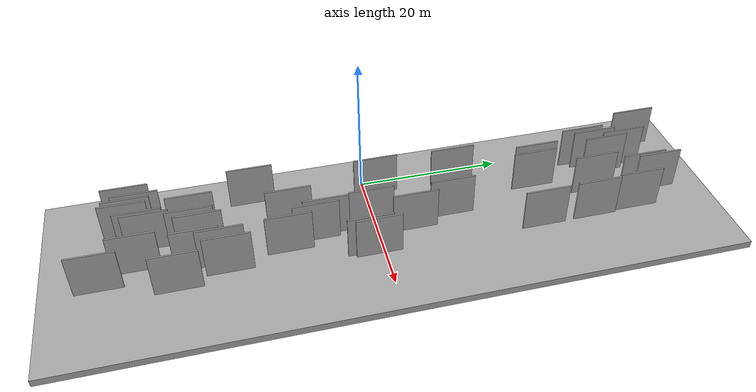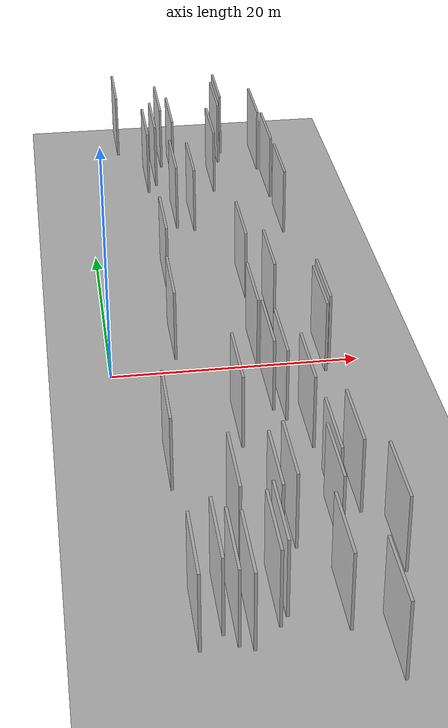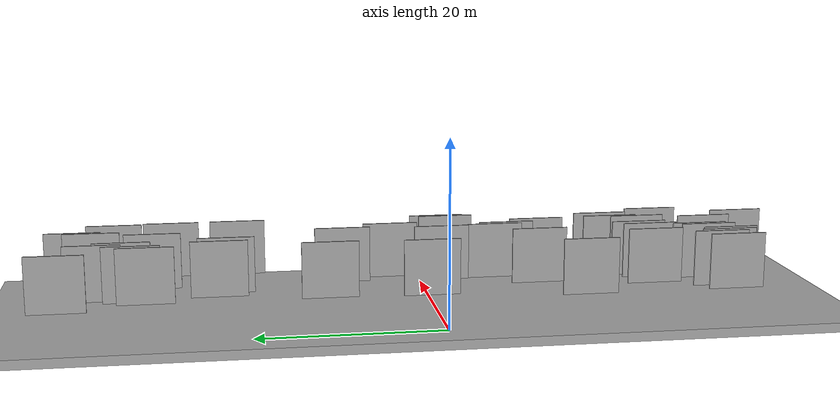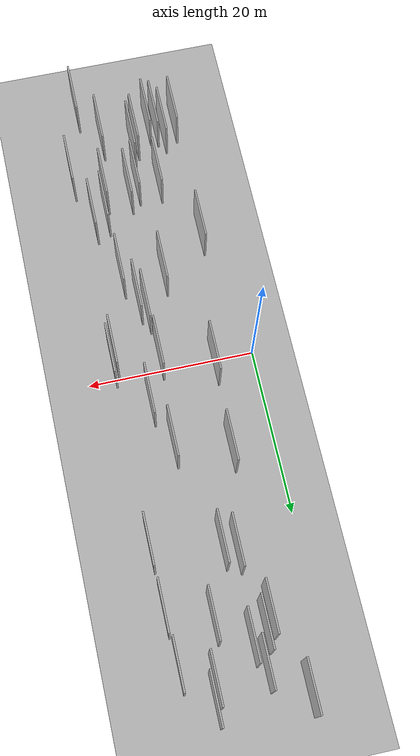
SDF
<?xml version="1.0" encoding="utf-8"?>

<sdf version="1.6">

   <world name="default">

      <gui fullscreen="0">

         <camera name="user_camera">

            <pose>-15 0 4.57585 0 0 0</pose>

            <view_controller>orbit</view_controller>

         </camera>

      </gui>

      <scene>

         <sky>

           <clouds>

             <speed>12</speed>

           </clouds>

         </sky>

         <ambient>0.4 0.4 0.4 1</ambient>

         <background>0.7 0.7 0.7 1</background>

         <shadows>1</shadows>

      </scene>

      <gravity>0 0 -9.8066</gravity>

      <magnetic_field>6e-06 2.3e-05 -4.2e-05</magnetic_field>

      <physics default="0" name="default_physics" type="ode">

         <ode>

            <solver>

               <type>quick</type>

               <iters>10</iters>

               <sor>1.0</sor>

               <use_dynamic_moi_rescaling>0</use_dynamic_moi_rescaling>

            </solver>

            <constraints>

               <cfm>0</cfm>

               <erp>0.2</erp>

               <contact_max_correcting_vel>100</contact_max_correcting_vel>

               <contact_surface_layer>0.001</contact_surface_layer>

            </constraints>

         </ode>

         <max_step_size>0.004</max_step_size>

         <real_time_factor>1</real_time_factor>

         <real_time_update_rate>250</real_time_update_rate>

      </physics>

      <light name="sun" type="directional">

         <cast_shadows>1</cast_shadows>

         <pose>0 0 10 0 0 0</pose>

         <diffuse>0.8 0.8 0.8 1</diffuse>

         <specular>0.2 0.2 0.2 1</specular>

         <attenuation>

            <range>1000</range>

            <constant>0.9</constant>

            <linear>0.01</linear>

            <quadratic>0.001</quadratic>

         </attenuation>

         <direction>-0.5 0.1 -0.9</direction>

      </light>

      <include>

         <name>ground_plane_1</name>

         <uri>model://HANNAS_ground_plane</uri>

         <pose>0 0 0  0 0 0</pose>

      </include>

      <include>

         <name>ground_plane_2</name>

         <uri>model://HANNAS_ground_plane</uri>

         <pose>100 0 0  0 0 0</pose>

      </include>

      <model name="HANNAS_wall_1">

         <static>1</static>

         <pose frame="">10.4138 -23.0798 2.5 0.000000 0.000000 1.570796</pose>

         <link name="link">

            <pose frame="">0 0 3.00 0 0 0</pose>

            <collision name="collision">

               <geometry>

                  <box>

                     <size>6.00 0.2 6.00</size>

                  </box>

               </geometry>

               <max_contacts>10</max_contacts>

               <surface>

                  <contact>

                     <ode/>

                  </contact>

                  <bounce/>

                  <friction>

                     <torsional>

                        <ode/>

                     </torsional>

                     <ode/>

                  </friction>

               </surface>

            </collision>

            <visual name="visual">

               <cast_shadows>0</cast_shadows>

               <geometry>

                  <box>

                     <size>6.00 0.2 6.00</size>

                  </box>

               </geometry>

               <material>

                  <script>

                     <uri>model://HANNAS_wall/materials/scripts</uri>

                     <uri>model://HANNAS_wall/materials/textures</uri>

                     <name>vrc/HANNAS_wall</name>

                  </script>

               </material>

            </visual>

            <self_collide>0</self_collide>

            <enable_wind>0</enable_wind>

            <kinematic>0</kinematic>

         </link>

      </model>

      <model name="HANNAS_wall_2">

         <static>1</static>

         <pose frame="">3.3635 39.5296 2.5 0.000000 0.000000 1.570796</pose>

         <link name="link">

            <pose frame="">0 0 3.00 0 0 0</pose>

            <collision name="collision">

               <geometry>

                  <box>

                     <size>6.00 0.2 6.00</size>

                  </box>

               </geometry>

               <max_contacts>10</max_contacts>

               <surface>

                  <contact>

                     <ode/>

                  </contact>

                  <bounce/>

                  <friction>

                     <torsional>

                        <ode/>

                     </torsional>

                     <ode/>

                  </friction>

               </surface>

            </collision>

            <visual name="visual">

               <cast_shadows>0</cast_shadows>

               <geometry>

                  <box>

                     <size>6.00 0.2 6.00</size>

                  </box>

               </geometry>

               <material>

                  <script>

                     <uri>model://HANNAS_wall/materials/scripts</uri>

                     <uri>model://HANNAS_wall/materials/textures</uri>

                     <name>vrc/HANNAS_wall</name>

                  </script>

               </material>

            </visual>

            <self_collide>0</self_collide>

            <enable_wind>0</enable_wind>

            <kinematic>0</kinematic>

         </link>

      </model>

      <model name="HANNAS_wall_3">

         <static>1</static>

         <pose frame="">13.4250 38.5788 2.5 0.000000 0.000000 1.570796</pose>

         <link name="link">

            <pose frame="">0 0 3.00 0 0 0</pose>

            <collision name="collision">

               <geometry>

                  <box>

                     <size>6.00 0.2 6.00</size>

                  </box>

               </geometry>

               <max_contacts>10</max_contacts>

               <surface>

                  <contact>

                     <ode/>

                  </contact>

                  <bounce/>

                  <friction>

                     <torsional>

                        <ode/>

                     </torsional>

                     <ode/>

                  </friction>

               </surface>

            </collision>

            <visual name="visual">

               <cast_shadows>0</cast_shadows>

               <geometry>

                  <box>

                     <size>6.00 0.2 6.00</size>

                  </box>

               </geometry>

               <material>

                  <script>

                     <uri>model://HANNAS_wall/materials/scripts</uri>

                     <uri>model://HANNAS_wall/materials/textures</uri>

                     <name>vrc/HANNAS_wall</name>

                  </script>

               </material>

            </visual>

            <self_collide>0</self_collide>

            <enable_wind>0</enable_wind>

            <kinematic>0</kinematic>

         </link>

      </model>

      <model name="HANNAS_wall_4">

         <static>1</static>

         <pose frame="">16.3193 -2.2714 2.5 0.000000 0.000000 1.570796</pose>

         <link name="link">

            <pose frame="">0 0 3.00 0 0 0</pose>

            <collision name="collision">

               <geometry>

                  <box>

                     <size>6.00 0.2 6.00</size>

                  </box>

               </geometry>

               <max_contacts>10</max_contacts>

               <surface>

                  <contact>

                     <ode/>

                  </contact>

                  <bounce/>

                  <friction>

                     <torsional>

                        <ode/>

                     </torsional>

                     <ode/>

                  </friction>

               </surface>

            </collision>

            <visual name="visual">

               <cast_shadows>0</cast_shadows>

               <geometry>

                  <box>

                     <size>6.00 0.2 6.00</size>

                  </box>

               </geometry>

               <material>

                  <script>

                     <uri>model://HANNAS_wall/materials/scripts</uri>

                     <uri>model://HANNAS_wall/materials/textures</uri>

                     <name>vrc/HANNAS_wall</name>

                  </script>

               </material>

            </visual>

            <self_collide>0</self_collide>

            <enable_wind>0</enable_wind>

            <kinematic>0</kinematic>

         </link>

      </model>

      <model name="HANNAS_wall_5">

         <static>1</static>

         <pose frame="">16.8255 28.2337 2.5 0.000000 0.000000 1.570796</pose>

         <link name="link">

            <pose frame="">0 0 3.00 0 0 0</pose>

            <collision name="collision">

               <geometry>

                  <box>

                     <size>6.00 0.2 6.00</size>

                  </box>

               </geometry>

               <max_contacts>10</max_contacts>

               <surface>

                  <contact>

                     <ode/>

                  </contact>

                  <bounce/>

                  <friction>

                     <torsional>

                        <ode/>

                     </torsional>

                     <ode/>

                  </friction>

               </surface>

            </collision>

            <visual name="visual">

               <cast_shadows>0</cast_shadows>

               <geometry>

                  <box>

                     <size>6.00 0.2 6.00</size>

                  </box>

               </geometry>

               <material>

                  <script>

                     <uri>model://HANNAS_wall/materials/scripts</uri>

                     <uri>model://HANNAS_wall/materials/textures</uri>

                     <name>vrc/HANNAS_wall</name>

                  </script>

               </material>

            </visual>

            <self_collide>0</self_collide>

            <enable_wind>0</enable_wind>

            <kinematic>0</kinematic>

         </link>

      </model>

      <model name="HANNAS_wall_6">

         <static>1</static>

         <pose frame="">7.3271 36.1389 2.5 0.000000 0.000000 1.570796</pose>

         <link name="link">

            <pose frame="">0 0 3.00 0 0 0</pose>

            <collision name="collision">

               <geometry>

                  <box>

                     <size>6.00 0.2 6.00</size>

                  </box>

               </geometry>

               <max_contacts>10</max_contacts>

               <surface>

                  <contact>

                     <ode/>

                  </contact>

                  <bounce/>

                  <friction>

                     <torsional>

                        <ode/>

                     </torsional>

                     <ode/>

                  </friction>

               </surface>

            </collision>

            <visual name="visual">

               <cast_shadows>0</cast_shadows>

               <geometry>

                  <box>

                     <size>6.00 0.2 6.00</size>

                  </box>

               </geometry>

               <material>

                  <script>

                     <uri>model://HANNAS_wall/materials/scripts</uri>

                     <uri>model://HANNAS_wall/materials/textures</uri>

                     <name>vrc/HANNAS_wall</name>

                  </script>

               </material>

            </visual>

            <self_collide>0</self_collide>

            <enable_wind>0</enable_wind>

            <kinematic>0</kinematic>

         </link>

      </model>

      <model name="HANNAS_wall_7">

         <static>1</static>

         <pose frame="">4.5911 -30.6181 2.5 0.000000 0.000000 1.570796</pose>

         <link name="link">

            <pose frame="">0 0 3.00 0 0 0</pose>

            <collision name="collision">

               <geometry>

                  <box>

                     <size>6.00 0.2 6.00</size>

                  </box>

               </geometry>

               <max_contacts>10</max_contacts>

               <surface>

                  <contact>

                     <ode/>

                  </contact>

                  <bounce/>

                  <friction>

                     <torsional>

                        <ode/>

                     </torsional>

                     <ode/>

                  </friction>

               </surface>

            </collision>

            <visual name="visual">

               <cast_shadows>0</cast_shadows>

               <geometry>

                  <box>

                     <size>6.00 0.2 6.00</size>

                  </box>

               </geometry>

               <material>

                  <script>

                     <uri>model://HANNAS_wall/materials/scripts</uri>

                     <uri>model://HANNAS_wall/materials/textures</uri>

                     <name>vrc/HANNAS_wall</name>

                  </script>

               </material>

            </visual>

            <self_collide>0</self_collide>

            <enable_wind>0</enable_wind>

            <kinematic>0</kinematic>

         </link>

      </model>

      <model name="HANNAS_wall_8">

         <static>1</static>

         <pose frame="">3.0097 -15.7475 2.5 0.000000 0.000000 1.570796</pose>

         <link name="link">

            <pose frame="">0 0 3.00 0 0 0</pose>

            <collision name="collision">

               <geometry>

                  <box>

                     <size>6.00 0.2 6.00</size>

                  </box>

               </geometry>

               <max_contacts>10</max_contacts>

               <surface>

                  <contact>

                     <ode/>

                  </contact>

                  <bounce/>

                  <friction>

                     <torsional>

                        <ode/>

                     </torsional>

                     <ode/>

                  </friction>

               </surface>

            </collision>

            <visual name="visual">

               <cast_shadows>0</cast_shadows>

               <geometry>

                  <box>

                     <size>6.00 0.2 6.00</size>

                  </box>

               </geometry>

               <material>

                  <script>

                     <uri>model://HANNAS_wall/materials/scripts</uri>

                     <uri>model://HANNAS_wall/materials/textures</uri>

                     <name>vrc/HANNAS_wall</name>

                  </script>

               </material>

            </visual>

            <self_collide>0</self_collide>

            <enable_wind>0</enable_wind>

            <kinematic>0</kinematic>

         </link>

      </model>

      <model name="HANNAS_wall_9">

         <static>1</static>

         <pose frame="">8.1685 -30.3727 2.5 0.000000 0.000000 1.570796</pose>

         <link name="link">

            <pose frame="">0 0 3.00 0 0 0</pose>

            <collision name="collision">

               <geometry>

                  <box>

                     <size>6.00 0.2 6.00</size>

                  </box>

               </geometry>

               <max_contacts>10</max_contacts>

               <surface>

                  <contact>

                     <ode/>

                  </contact>

                  <bounce/>

                  <friction>

                     <torsional>

                        <ode/>

                     </torsional>

                     <ode/>

                  </friction>

               </surface>

            </collision>

            <visual name="visual">

               <cast_shadows>0</cast_shadows>

               <geometry>

                  <box>

                     <size>6.00 0.2 6.00</size>

                  </box>

               </geometry>

               <material>

                  <script>

                     <uri>model://HANNAS_wall/materials/scripts</uri>

                     <uri>model://HANNAS_wall/materials/textures</uri>

                     <name>vrc/HANNAS_wall</name>

                  </script>

               </material>

            </visual>

            <self_collide>0</self_collide>

            <enable_wind>0</enable_wind>

            <kinematic>0</kinematic>

         </link>

      </model>

      <model name="HANNAS_wall_10">

         <static>1</static>

         <pose frame="">12.9668 36.6011 2.5 0.000000 0.000000 1.570796</pose>

         <link name="link">

            <pose frame="">0 0 3.00 0 0 0</pose>

            <collision name="collision">

               <geometry>

                  <box>

                     <size>6.00 0.2 6.00</size>

                  </box>

               </geometry>

               <max_contacts>10</max_contacts>

               <surface>

                  <contact>

                     <ode/>

                  </contact>

                  <bounce/>

                  <friction>

                     <torsional>

                        <ode/>

                     </torsional>

                     <ode/>

                  </friction>

               </surface>

            </collision>

            <visual name="visual">

               <cast_shadows>0</cast_shadows>

               <geometry>

                  <box>

                     <size>6.00 0.2 6.00</size>

                  </box>

               </geometry>

               <material>

                  <script>

                     <uri>model://HANNAS_wall/materials/scripts</uri>

                     <uri>model://HANNAS_wall/materials/textures</uri>

                     <name>vrc/HANNAS_wall</name>

                  </script>

               </material>

            </visual>

            <self_collide>0</self_collide>

            <enable_wind>0</enable_wind>

            <kinematic>0</kinematic>

         </link>

      </model>

      <model name="HANNAS_wall_11">

         <static>1</static>

         <pose frame="">7.5120 23.1187 2.5 0.000000 0.000000 1.570796</pose>

         <link name="link">

            <pose frame="">0 0 3.00 0 0 0</pose>

            <collision name="collision">

               <geometry>

                  <box>

                     <size>6.00 0.2 6.00</size>

                  </box>

               </geometry>

               <max_contacts>10</max_contacts>

               <surface>

                  <contact>

                     <ode/>

                  </contact>

                  <bounce/>

                  <friction>

                     <torsional>

                        <ode/>

                     </torsional>

                     <ode/>

                  </friction>

               </surface>

            </collision>

            <visual name="visual">

               <cast_shadows>0</cast_shadows>

               <geometry>

                  <box>

                     <size>6.00 0.2 6.00</size>

                  </box>

               </geometry>

               <material>

                  <script>

                     <uri>model://HANNAS_wall/materials/scripts</uri>

                     <uri>model://HANNAS_wall/materials/textures</uri>

                     <name>vrc/HANNAS_wall</name>

                  </script>

               </material>

            </visual>

            <self_collide>0</self_collide>

            <enable_wind>0</enable_wind>

            <kinematic>0</kinematic>

         </link>

      </model>

      <model name="HANNAS_wall_12">

         <static>1</static>

         <pose frame="">12.4008 -31.2309 2.5 0.000000 0.000000 1.570796</pose>

         <link name="link">

            <pose frame="">0 0 3.00 0 0 0</pose>

            <collision name="collision">

               <geometry>

                  <box>

                     <size>6.00 0.2 6.00</size>

                  </box>

               </geometry>

               <max_contacts>10</max_contacts>

               <surface>

                  <contact>

                     <ode/>

                  </contact>

                  <bounce/>

                  <friction>

                     <torsional>

                        <ode/>

                     </torsional>

                     <ode/>

                  </friction>

               </surface>

            </collision>

            <visual name="visual">

               <cast_shadows>0</cast_shadows>

               <geometry>

                  <box>

                     <size>6.00 0.2 6.00</size>

                  </box>

               </geometry>

               <material>

                  <script>

                     <uri>model://HANNAS_wall/materials/scripts</uri>

                     <uri>model://HANNAS_wall/materials/textures</uri>

                     <name>vrc/HANNAS_wall</name>

                  </script>

               </material>

            </visual>

            <self_collide>0</self_collide>

            <enable_wind>0</enable_wind>

            <kinematic>0</kinematic>

         </link>

      </model>

      <model name="HANNAS_wall_13">

         <static>1</static>

         <pose frame="">3.0069 -31.8445 2.5 0.000000 0.000000 1.570796</pose>

         <link name="link">

            <pose frame="">0 0 3.00 0 0 0</pose>

            <collision name="collision">

               <geometry>

                  <box>

                     <size>6.00 0.2 6.00</size>

                  </box>

               </geometry>

               <max_contacts>10</max_contacts>

               <surface>

                  <contact>

                     <ode/>

                  </contact>

                  <bounce/>

                  <friction>

                     <torsional>

                        <ode/>

                     </torsional>

                     <ode/>

                  </friction>

               </surface>

            </collision>

            <visual name="visual">

               <cast_shadows>0</cast_shadows>

               <geometry>

                  <box>

                     <size>6.00 0.2 6.00</size>

                  </box>

               </geometry>

               <material>

                  <script>

                     <uri>model://HANNAS_wall/materials/scripts</uri>

                     <uri>model://HANNAS_wall/materials/textures</uri>

                     <name>vrc/HANNAS_wall</name>

                  </script>

               </material>

            </visual>

            <self_collide>0</self_collide>

            <enable_wind>0</enable_wind>

            <kinematic>0</kinematic>

         </link>

      </model>

      <model name="HANNAS_wall_14">

         <static>1</static>

         <pose frame="">8.1854 33.1751 2.5 0.000000 0.000000 1.570796</pose>

         <link name="link">

            <pose frame="">0 0 3.00 0 0 0</pose>

            <collision name="collision">

               <geometry>

                  <box>

                     <size>6.00 0.2 6.00</size>

                  </box>

               </geometry>

               <max_contacts>10</max_contacts>

               <surface>

                  <contact>

                     <ode/>

                  </contact>

                  <bounce/>

                  <friction>

                     <torsional>

                        <ode/>

                     </torsional>

                     <ode/>

                  </friction>

               </surface>

            </collision>

            <visual name="visual">

               <cast_shadows>0</cast_shadows>

               <geometry>

                  <box>

                     <size>6.00 0.2 6.00</size>

                  </box>

               </geometry>

               <material>

                  <script>

                     <uri>model://HANNAS_wall/materials/scripts</uri>

                     <uri>model://HANNAS_wall/materials/textures</uri>

                     <name>vrc/HANNAS_wall</name>

                  </script>

               </material>

            </visual>

            <self_collide>0</self_collide>

            <enable_wind>0</enable_wind>

            <kinematic>0</kinematic>

         </link>

      </model>

      <model name="HANNAS_wall_15">

         <static>1</static>

         <pose frame="">16.9858 -26.3605 2.5 0.000000 0.000000 1.570796</pose>

         <link name="link">

            <pose frame="">0 0 3.00 0 0 0</pose>

            <collision name="collision">

               <geometry>

                  <box>

                     <size>6.00 0.2 6.00</size>

                  </box>

               </geometry>

               <max_contacts>10</max_contacts>

               <surface>

                  <contact>

                     <ode/>

                  </contact>

                  <bounce/>

                  <friction>

                     <torsional>

                        <ode/>

                     </torsional>

                     <ode/>

                  </friction>

               </surface>

            </collision>

            <visual name="visual">

               <cast_shadows>0</cast_shadows>

               <geometry>

                  <box>

                     <size>6.00 0.2 6.00</size>

                  </box>

               </geometry>

               <material>

                  <script>

                     <uri>model://HANNAS_wall/materials/scripts</uri>

                     <uri>model://HANNAS_wall/materials/textures</uri>

                     <name>vrc/HANNAS_wall</name>

                  </script>

               </material>

            </visual>

            <self_collide>0</self_collide>

            <enable_wind>0</enable_wind>

            <kinematic>0</kinematic>

         </link>

      </model>

      <model name="HANNAS_wall_16">

         <static>1</static>

         <pose frame="">5.4166 -31.7544 2.5 0.000000 0.000000 1.570796</pose>

         <link name="link">

            <pose frame="">0 0 3.00 0 0 0</pose>

            <collision name="collision">

               <geometry>

                  <box>

                     <size>6.00 0.2 6.00</size>

                  </box>

               </geometry>

               <max_contacts>10</max_contacts>

               <surface>

                  <contact>

                     <ode/>

                  </contact>

                  <bounce/>

                  <friction>

                     <torsional>

                        <ode/>

                     </torsional>

                     <ode/>

                  </friction>

               </surface>

            </collision>

            <visual name="visual">

               <cast_shadows>0</cast_shadows>

               <geometry>

                  <box>

                     <size>6.00 0.2 6.00</size>

                  </box>

               </geometry>

               <material>

                  <script>

                     <uri>model://HANNAS_wall/materials/scripts</uri>

                     <uri>model://HANNAS_wall/materials/textures</uri>

                     <name>vrc/HANNAS_wall</name>

                  </script>

               </material>

            </visual>

            <self_collide>0</self_collide>

            <enable_wind>0</enable_wind>

            <kinematic>0</kinematic>

         </link>

      </model>

      <model name="HANNAS_wall_17">

         <static>1</static>

         <pose frame="">11.4861 -7.0488 2.5 0.000000 0.000000 1.570796</pose>

         <link name="link">

            <pose frame="">0 0 3.00 0 0 0</pose>

            <collision name="collision">

               <geometry>

                  <box>

                     <size>6.00 0.2 6.00</size>

                  </box>

               </geometry>

               <max_contacts>10</max_contacts>

               <surface>

                  <contact>

                     <ode/>

                  </contact>

                  <bounce/>

                  <friction>

                     <torsional>

                        <ode/>

                     </torsional>

                     <ode/>

                  </friction>

               </surface>

            </collision>

            <visual name="visual">

               <cast_shadows>0</cast_shadows>

               <geometry>

                  <box>

                     <size>6.00 0.2 6.00</size>

                  </box>

               </geometry>

               <material>

                  <script>

                     <uri>model://HANNAS_wall/materials/scripts</uri>

                     <uri>model://HANNAS_wall/materials/textures</uri>

                     <name>vrc/HANNAS_wall</name>

                  </script>

               </material>

            </visual>

            <self_collide>0</self_collide>

            <enable_wind>0</enable_wind>

            <kinematic>0</kinematic>

         </link>

      </model>

      <model name="HANNAS_wall_18">

         <static>1</static>

         <pose frame="">6.5810 -23.8652 2.5 0.000000 0.000000 1.570796</pose>

         <link name="link">

            <pose frame="">0 0 3.00 0 0 0</pose>

            <collision name="collision">

               <geometry>

                  <box>

                     <size>6.00 0.2 6.00</size>

                  </box>

               </geometry>

               <max_contacts>10</max_contacts>

               <surface>

                  <contact>

                     <ode/>

                  </contact>

                  <bounce/>

                  <friction>

                     <torsional>

                        <ode/>

                     </torsional>

                     <ode/>

                  </friction>

               </surface>

            </collision>

            <visual name="visual">

               <cast_shadows>0</cast_shadows>

               <geometry>

                  <box>

                     <size>6.00 0.2 6.00</size>

                  </box>

               </geometry>

               <material>

                  <script>

                     <uri>model://HANNAS_wall/materials/scripts</uri>

                     <uri>model://HANNAS_wall/materials/textures</uri>

                     <name>vrc/HANNAS_wall</name>

                  </script>

               </material>

            </visual>

            <self_collide>0</self_collide>

            <enable_wind>0</enable_wind>

            <kinematic>0</kinematic>

         </link>

      </model>

      <model name="HANNAS_wall_19">

         <static>1</static>

         <pose frame="">5.6276 30.7018 2.5 0.000000 0.000000 1.570796</pose>

         <link name="link">

            <pose frame="">0 0 3.00 0 0 0</pose>

            <collision name="collision">

               <geometry>

                  <box>

                     <size>6.00 0.2 6.00</size>

                  </box>

               </geometry>

               <max_contacts>10</max_contacts>

               <surface>

                  <contact>

                     <ode/>

                  </contact>

                  <bounce/>

                  <friction>

                     <torsional>

                        <ode/>

                     </torsional>

                     <ode/>

                  </friction>

               </surface>

            </collision>

            <visual name="visual">

               <cast_shadows>0</cast_shadows>

               <geometry>

                  <box>

                     <size>6.00 0.2 6.00</size>

                  </box>

               </geometry>

               <material>

                  <script>

                     <uri>model://HANNAS_wall/materials/scripts</uri>

                     <uri>model://HANNAS_wall/materials/textures</uri>

                     <name>vrc/HANNAS_wall</name>

                  </script>

               </material>

            </visual>

            <self_collide>0</self_collide>

            <enable_wind>0</enable_wind>

            <kinematic>0</kinematic>

         </link>

      </model>

      <model name="HANNAS_wall_20">

         <static>1</static>

         <pose frame="">11.8398 9.7941 2.5 0.000000 0.000000 1.570796</pose>

         <link name="link">

            <pose frame="">0 0 3.00 0 0 0</pose>

            <collision name="collision">

               <geometry>

                  <box>

                     <size>6.00 0.2 6.00</size>

                  </box>

               </geometry>

               <max_contacts>10</max_contacts>

               <surface>

                  <contact>

                     <ode/>

                  </contact>

                  <bounce/>

                  <friction>

                     <torsional>

                        <ode/>

                     </torsional>

                     <ode/>

                  </friction>

               </surface>

            </collision>

            <visual name="visual">

               <cast_shadows>0</cast_shadows>

               <geometry>

                  <box>

                     <size>6.00 0.2 6.00</size>

                  </box>

               </geometry>

               <material>

                  <script>

                     <uri>model://HANNAS_wall/materials/scripts</uri>

                     <uri>model://HANNAS_wall/materials/textures</uri>

                     <name>vrc/HANNAS_wall</name>

                  </script>

               </material>

            </visual>

            <self_collide>0</self_collide>

            <enable_wind>0</enable_wind>

            <kinematic>0</kinematic>

         </link>

      </model>

      <model name="HANNAS_wall_21">

         <static>1</static>

         <pose frame="">11.7619 30.1165 2.5 0.000000 0.000000 1.570796</pose>

         <link name="link">

            <pose frame="">0 0 3.00 0 0 0</pose>

            <collision name="collision">

               <geometry>

                  <box>

                     <size>6.00 0.2 6.00</size>

                  </box>

               </geometry>

               <max_contacts>10</max_contacts>

               <surface>

                  <contact>

                     <ode/>

                  </contact>

                  <bounce/>

                  <friction>

                     <torsional>

                        <ode/>

                     </torsional>

                     <ode/>

                  </friction>

               </surface>

            </collision>

            <visual name="visual">

               <cast_shadows>0</cast_shadows>

               <geometry>

                  <box>

                     <size>6.00 0.2 6.00</size>

                  </box>

               </geometry>

               <material>

                  <script>

                     <uri>model://HANNAS_wall/materials/scripts</uri>

                     <uri>model://HANNAS_wall/materials/textures</uri>

                     <name>vrc/HANNAS_wall</name>

                  </script>

               </material>

            </visual>

            <self_collide>0</self_collide>

            <enable_wind>0</enable_wind>

            <kinematic>0</kinematic>

         </link>

      </model>

      <model name="HANNAS_wall_22">

         <static>1</static>

         <pose frame="">5.4948 11.6459 2.5 0.000000 0.000000 1.570796</pose>

         <link name="link">

            <pose frame="">0 0 3.00 0 0 0</pose>

            <collision name="collision">

               <geometry>

                  <box>

                     <size>6.00 0.2 6.00</size>

                  </box>

               </geometry>

               <max_contacts>10</max_contacts>

               <surface>

                  <contact>

                     <ode/>

                  </contact>

                  <bounce/>

                  <friction>

                     <torsional>

                        <ode/>

                     </torsional>

                     <ode/>

                  </friction>

               </surface>

            </collision>

            <visual name="visual">

               <cast_shadows>0</cast_shadows>

               <geometry>

                  <box>

                     <size>6.00 0.2 6.00</size>

                  </box>

               </geometry>

               <material>

                  <script>

                     <uri>model://HANNAS_wall/materials/scripts</uri>

                     <uri>model://HANNAS_wall/materials/textures</uri>

                     <name>vrc/HANNAS_wall</name>

                  </script>

               </material>

            </visual>

            <self_collide>0</self_collide>

            <enable_wind>0</enable_wind>

            <kinematic>0</kinematic>

         </link>

      </model>

      <model name="HANNAS_wall_23">

         <static>1</static>

         <pose frame="">15.3777 -19.9587 2.5 0.000000 0.000000 1.570796</pose>

         <link name="link">

            <pose frame="">0 0 3.00 0 0 0</pose>

            <collision name="collision">

               <geometry>

                  <box>

                     <size>6.00 0.2 6.00</size>

                  </box>

               </geometry>

               <max_contacts>10</max_contacts>

               <surface>

                  <contact>

                     <ode/>

                  </contact>

                  <bounce/>

                  <friction>

                     <torsional>

                        <ode/>

                     </torsional>

                     <ode/>

                  </friction>

               </surface>

            </collision>

            <visual name="visual">

               <cast_shadows>0</cast_shadows>

               <geometry>

                  <box>

                     <size>6.00 0.2 6.00</size>

                  </box>

               </geometry>

               <material>

                  <script>

                     <uri>model://HANNAS_wall/materials/scripts</uri>

                     <uri>model://HANNAS_wall/materials/textures</uri>

                     <name>vrc/HANNAS_wall</name>

                  </script>

               </material>

            </visual>

            <self_collide>0</self_collide>

            <enable_wind>0</enable_wind>

            <kinematic>0</kinematic>

         </link>

      </model>

      <model name="HANNAS_wall_24">

         <static>1</static>

         <pose frame="">11.2071 -1.0502 2.5 0.000000 0.000000 1.570796</pose>

         <link name="link">

            <pose frame="">0 0 3.00 0 0 0</pose>

            <collision name="collision">

               <geometry>

                  <box>

                     <size>6.00 0.2 6.00</size>

                  </box>

               </geometry>

               <max_contacts>10</max_contacts>

               <surface>

                  <contact>

                     <ode/>

                  </contact>

                  <bounce/>

                  <friction>

                     <torsional>

                        <ode/>

                     </torsional>

                     <ode/>

                  </friction>

               </surface>

            </collision>

            <visual name="visual">

               <cast_shadows>0</cast_shadows>

               <geometry>

                  <box>

                     <size>6.00 0.2 6.00</size>

                  </box>

               </geometry>

               <material>

                  <script>

                     <uri>model://HANNAS_wall/materials/scripts</uri>

                     <uri>model://HANNAS_wall/materials/textures</uri>

                     <name>vrc/HANNAS_wall</name>

                  </script>

               </material>

            </visual>

            <self_collide>0</self_collide>

            <enable_wind>0</enable_wind>

            <kinematic>0</kinematic>

         </link>

      </model>

      <model name="HANNAS_wall_25">

         <static>1</static>

         <pose frame="">14.7472 -35.8660 2.5 0.000000 0.000000 1.570796</pose>

         <link name="link">

            <pose frame="">0 0 3.00 0 0 0</pose>

            <collision name="collision">

               <geometry>

                  <box>

                     <size>6.00 0.2 6.00</size>

                  </box>

               </geometry>

               <max_contacts>10</max_contacts>

               <surface>

                  <contact>

                     <ode/>

                  </contact>

                  <bounce/>

                  <friction>

                     <torsional>

                        <ode/>

                     </torsional>

                     <ode/>

                  </friction>

               </surface>

            </collision>

            <visual name="visual">

               <cast_shadows>0</cast_shadows>

               <geometry>

                  <box>

                     <size>6.00 0.2 6.00</size>

                  </box>

               </geometry>

               <material>

                  <script>

                     <uri>model://HANNAS_wall/materials/scripts</uri>

                     <uri>model://HANNAS_wall/materials/textures</uri>

                     <name>vrc/HANNAS_wall</name>

                  </script>

               </material>

            </visual>

            <self_collide>0</self_collide>

            <enable_wind>0</enable_wind>

            <kinematic>0</kinematic>

         </link>

      </model>

      <model name="HANNAS_wall_26">

         <static>1</static>

         <pose frame="">13.3526 4.3613 2.5 0.000000 0.000000 1.570796</pose>

         <link name="link">

            <pose frame="">0 0 3.00 0 0 0</pose>

            <collision name="collision">

               <geometry>

                  <box>

                     <size>6.00 0.2 6.00</size>

                  </box>

               </geometry>

               <max_contacts>10</max_contacts>

               <surface>

                  <contact>

                     <ode/>

                  </contact>

                  <bounce/>

                  <friction>

                     <torsional>

                        <ode/>

                     </torsional>

                     <ode/>

                  </friction>

               </surface>

            </collision>

            <visual name="visual">

               <cast_shadows>0</cast_shadows>

               <geometry>

                  <box>

                     <size>6.00 0.2 6.00</size>

                  </box>

               </geometry>

               <material>

                  <script>

                     <uri>model://HANNAS_wall/materials/scripts</uri>

                     <uri>model://HANNAS_wall/materials/textures</uri>

                     <name>vrc/HANNAS_wall</name>

                  </script>

               </material>

            </visual>

            <self_collide>0</self_collide>

            <enable_wind>0</enable_wind>

            <kinematic>0</kinematic>

         </link>

      </model>

      <model name="HANNAS_wall_27">

         <static>1</static>

         <pose frame="">9.0126 22.3778 2.5 0.000000 0.000000 1.570796</pose>

         <link name="link">

            <pose frame="">0 0 3.00 0 0 0</pose>

            <collision name="collision">

               <geometry>

                  <box>

                     <size>6.00 0.2 6.00</size>

                  </box>

               </geometry>

               <max_contacts>10</max_contacts>

               <surface>

                  <contact>

                     <ode/>

                  </contact>

                  <bounce/>

                  <friction>

                     <torsional>

                        <ode/>

                     </torsional>

                     <ode/>

                  </friction>

               </surface>

            </collision>

            <visual name="visual">

               <cast_shadows>0</cast_shadows>

               <geometry>

                  <box>

                     <size>6.00 0.2 6.00</size>

                  </box>

               </geometry>

               <material>

                  <script>

                     <uri>model://HANNAS_wall/materials/scripts</uri>

                     <uri>model://HANNAS_wall/materials/textures</uri>

                     <name>vrc/HANNAS_wall</name>

                  </script>

               </material>

            </visual>

            <self_collide>0</self_collide>

            <enable_wind>0</enable_wind>

            <kinematic>0</kinematic>

         </link>

      </model>

      <model name="HANNAS_wall_28">

         <static>1</static>

         <pose frame="">8.5533 -11.4217 2.5 0.000000 0.000000 1.570796</pose>

         <link name="link">

            <pose frame="">0 0 3.00 0 0 0</pose>

            <collision name="collision">

               <geometry>

                  <box>

                     <size>6.00 0.2 6.00</size>

                  </box>

               </geometry>

               <max_contacts>10</max_contacts>

               <surface>

                  <contact>

                     <ode/>

                  </contact>

                  <bounce/>

                  <friction>

                     <torsional>

                        <ode/>

                     </torsional>

                     <ode/>

                  </friction>

               </surface>

            </collision>

            <visual name="visual">

               <cast_shadows>0</cast_shadows>

               <geometry>

                  <box>

                     <size>6.00 0.2 6.00</size>

                  </box>

               </geometry>

               <material>

                  <script>

                     <uri>model://HANNAS_wall/materials/scripts</uri>

                     <uri>model://HANNAS_wall/materials/textures</uri>

                     <name>vrc/HANNAS_wall</name>

                  </script>

               </material>

            </visual>

            <self_collide>0</self_collide>

            <enable_wind>0</enable_wind>

            <kinematic>0</kinematic>

         </link>

      </model>

      <model name="HANNAS_wall_29">

         <static>1</static>

         <pose frame="">12.2326 -8.4662 2.5 0.000000 0.000000 1.570796</pose>

         <link name="link">

            <pose frame="">0 0 3.00 0 0 0</pose>

            <collision name="collision">

               <geometry>

                  <box>

                     <size>6.00 0.2 6.00</size>

                  </box>

               </geometry>

               <max_contacts>10</max_contacts>

               <surface>

                  <contact>

                     <ode/>

                  </contact>

                  <bounce/>

                  <friction>

                     <torsional>

                        <ode/>

                     </torsional>

                     <ode/>

                  </friction>

               </surface>

            </collision>

            <visual name="visual">

               <cast_shadows>0</cast_shadows>

               <geometry>

                  <box>

                     <size>6.00 0.2 6.00</size>

                  </box>

               </geometry>

               <material>

                  <script>

                     <uri>model://HANNAS_wall/materials/scripts</uri>

                     <uri>model://HANNAS_wall/materials/textures</uri>

                     <name>vrc/HANNAS_wall</name>

                  </script>

               </material>

            </visual>

            <self_collide>0</self_collide>

            <enable_wind>0</enable_wind>

            <kinematic>0</kinematic>

         </link>

      </model>

      <model name="HANNAS_wall_30">

         <static>1</static>

         <pose frame="">6.4597 32.1451 2.5 0.000000 0.000000 1.570796</pose>

         <link name="link">

            <pose frame="">0 0 3.00 0 0 0</pose>

            <collision name="collision">

               <geometry>

                  <box>

                     <size>6.00 0.2 6.00</size>

                  </box>

               </geometry>

               <max_contacts>10</max_contacts>

               <surface>

                  <contact>

                     <ode/>

                  </contact>

                  <bounce/>

                  <friction>

                     <torsional>

                        <ode/>

                     </torsional>

                     <ode/>

                  </friction>

               </surface>

            </collision>

            <visual name="visual">

               <cast_shadows>0</cast_shadows>

               <geometry>

                  <box>

                     <size>6.00 0.2 6.00</size>

                  </box>

               </geometry>

               <material>

                  <script>

                     <uri>model://HANNAS_wall/materials/scripts</uri>

                     <uri>model://HANNAS_wall/materials/textures</uri>

                     <name>vrc/HANNAS_wall</name>

                  </script>

               </material>

            </visual>

            <self_collide>0</self_collide>

            <enable_wind>0</enable_wind>

            <kinematic>0</kinematic>

         </link>

      </model>

      <model name="HANNAS_wall_31">

         <static>1</static>

         <pose frame="">16.7542 -1.2713 2.5 0.000000 0.000000 1.570796</pose>

         <link name="link">

            <pose frame="">0 0 3.00 0 0 0</pose>

            <collision name="collision">

               <geometry>

                  <box>

                     <size>6.00 0.2 6.00</size>

                  </box>

               </geometry>

               <max_contacts>10</max_contacts>

               <surface>

                  <contact>

                     <ode/>

                  </contact>

                  <bounce/>

                  <friction>

                     <torsional>

                        <ode/>

                     </torsional>

                     <ode/>

                  </friction>

               </surface>

            </collision>

            <visual name="visual">

               <cast_shadows>0</cast_shadows>

               <geometry>

                  <box>

                     <size>6.00 0.2 6.00</size>

                  </box>

               </geometry>

               <material>

                  <script>

                     <uri>model://HANNAS_wall/materials/scripts</uri>

                     <uri>model://HANNAS_wall/materials/textures</uri>

                     <name>vrc/HANNAS_wall</name>

                  </script>

               </material>

            </visual>

            <self_collide>0</self_collide>

            <enable_wind>0</enable_wind>

            <kinematic>0</kinematic>

         </link>

      </model>

      <model name="HANNAS_wall_32">

         <static>1</static>

         <pose frame="">5.0265 0.9333 2.5 0.000000 0.000000 1.570796</pose>

         <link name="link">

            <pose frame="">0 0 3.00 0 0 0</pose>

            <collision name="collision">

               <geometry>

                  <box>

                     <size>6.00 0.2 6.00</size>

                  </box>

               </geometry>

               <max_contacts>10</max_contacts>

               <surface>

                  <contact>

                     <ode/>

                  </contact>

                  <bounce/>

                  <friction>

                     <torsional>

                        <ode/>

                     </torsional>

                     <ode/>

                  </friction>

               </surface>

            </collision>

            <visual name="visual">

               <cast_shadows>0</cast_shadows>

               <geometry>

                  <box>

                     <size>6.00 0.2 6.00</size>

                  </box>

               </geometry>

               <material>

                  <script>

                     <uri>model://HANNAS_wall/materials/scripts</uri>

                     <uri>model://HANNAS_wall/materials/textures</uri>

                     <name>vrc/HANNAS_wall</name>

                  </script>

               </material>

            </visual>

            <self_collide>0</self_collide>

            <enable_wind>0</enable_wind>

            <kinematic>0</kinematic>

         </link>

      </model>

      <model name="HANNAS_wall_33">

         <static>1</static>

         <pose frame="">16.9094 21.0055 2.5 0.000000 0.000000 1.570796</pose>

         <link name="link">

            <pose frame="">0 0 3.00 0 0 0</pose>

            <collision name="collision">

               <geometry>

                  <box>

                     <size>6.00 0.2 6.00</size>

                  </box>

               </geometry>

               <max_contacts>10</max_contacts>

               <surface>

                  <contact>

                     <ode/>

                  </contact>

                  <bounce/>

                  <friction>

                     <torsional>

                        <ode/>

                     </torsional>

                     <ode/>

                  </friction>

               </surface>

            </collision>

            <visual name="visual">

               <cast_shadows>0</cast_shadows>

               <geometry>

                  <box>

                     <size>6.00 0.2 6.00</size>

                  </box>

               </geometry>

               <material>

                  <script>

                     <uri>model://HANNAS_wall/materials/scripts</uri>

                     <uri>model://HANNAS_wall/materials/textures</uri>

                     <name>vrc/HANNAS_wall</name>

                  </script>

               </material>

            </visual>

            <self_collide>0</self_collide>

            <enable_wind>0</enable_wind>

            <kinematic>0</kinematic>

         </link>

      </model>

      <model name="HANNAS_wall_34">

         <static>1</static>

         <pose frame="">16.5243 34.3904 2.5 0.000000 0.000000 1.570796</pose>

         <link name="link">

            <pose frame="">0 0 3.00 0 0 0</pose>

            <collision name="collision">

               <geometry>

                  <box>

                     <size>6.00 0.2 6.00</size>

                  </box>

               </geometry>

               <max_contacts>10</max_contacts>

               <surface>

                  <contact>

                     <ode/>

                  </contact>

                  <bounce/>

                  <friction>

                     <torsional>

                        <ode/>

                     </torsional>

                     <ode/>

                  </friction>

               </surface>

            </collision>

            <visual name="visual">

               <cast_shadows>0</cast_shadows>

               <geometry>

                  <box>

                     <size>6.00 0.2 6.00</size>

                  </box>

               </geometry>

               <material>

                  <script>

                     <uri>model://HANNAS_wall/materials/scripts</uri>

                     <uri>model://HANNAS_wall/materials/textures</uri>

                     <name>vrc/HANNAS_wall</name>

                  </script>

               </material>

            </visual>

            <self_collide>0</self_collide>

            <enable_wind>0</enable_wind>

            <kinematic>0</kinematic>

         </link>

      </model>

      <model name="HANNAS_wall_35">

         <static>1</static>

         <pose frame="">6.3109 -32.1982 2.5 0.000000 0.000000 1.570796</pose>

         <link name="link">

            <pose frame="">0 0 3.00 0 0 0</pose>

            <collision name="collision">

               <geometry>

                  <box>

                     <size>6.00 0.2 6.00</size>

                  </box>

               </geometry>

               <max_contacts>10</max_contacts>

               <surface>

                  <contact>

                     <ode/>

                  </contact>

                  <bounce/>

                  <friction>

                     <torsional>

                        <ode/>

                     </torsional>

                     <ode/>

                  </friction>

               </surface>

            </collision>

            <visual name="visual">

               <cast_shadows>0</cast_shadows>

               <geometry>

                  <box>

                     <size>6.00 0.2 6.00</size>

                  </box>

               </geometry>

               <material>

                  <script>

                     <uri>model://HANNAS_wall/materials/scripts</uri>

                     <uri>model://HANNAS_wall/materials/textures</uri>

                     <name>vrc/HANNAS_wall</name>

                  </script>

               </material>

            </visual>

            <self_collide>0</self_collide>

            <enable_wind>0</enable_wind>

            <kinematic>0</kinematic>

         </link>

      </model>

      <model name="HANNAS_wall_36">

         <static>1</static>

         <pose frame="">8.7368 -29.5062 2.5 0.000000 0.000000 1.570796</pose>

         <link name="link">

            <pose frame="">0 0 3.00 0 0 0</pose>

            <collision name="collision">

               <geometry>

                  <box>

                     <size>6.00 0.2 6.00</size>

                  </box>

               </geometry>

               <max_contacts>10</max_contacts>

               <surface>

                  <contact>

                     <ode/>

                  </contact>

                  <bounce/>

                  <friction>

                     <torsional>

                        <ode/>

                     </torsional>

                     <ode/>

                  </friction>

               </surface>

            </collision>

            <visual name="visual">

               <cast_shadows>0</cast_shadows>

               <geometry>

                  <box>

                     <size>6.00 0.2 6.00</size>

                  </box>

               </geometry>

               <material>

                  <script>

                     <uri>model://HANNAS_wall/materials/scripts</uri>

                     <uri>model://HANNAS_wall/materials/textures</uri>

                     <name>vrc/HANNAS_wall</name>

                  </script>

               </material>

            </visual>

            <self_collide>0</self_collide>

            <enable_wind>0</enable_wind>

            <kinematic>0</kinematic>

         </link>

      </model>

      <model name="HANNAS_wall_37">

         <static>1</static>

         <pose frame="">13.5639 -12.1517 2.5 0.000000 0.000000 1.570796</pose>

         <link name="link">

            <pose frame="">0 0 3.00 0 0 0</pose>

            <collision name="collision">

               <geometry>

                  <box>

                     <size>6.00 0.2 6.00</size>

                  </box>

               </geometry>

               <max_contacts>10</max_contacts>

               <surface>

                  <contact>

                     <ode/>

                  </contact>

                  <bounce/>

                  <friction>

                     <torsional>

                        <ode/>

                     </torsional>

                     <ode/>

                  </friction>

               </surface>

            </collision>

            <visual name="visual">

               <cast_shadows>0</cast_shadows>

               <geometry>

                  <box>

                     <size>6.00 0.2 6.00</size>

                  </box>

               </geometry>

               <material>

                  <script>

                     <uri>model://HANNAS_wall/materials/scripts</uri>

                     <uri>model://HANNAS_wall/materials/textures</uri>

                     <name>vrc/HANNAS_wall</name>

                  </script>

               </material>

            </visual>

            <self_collide>0</self_collide>

            <enable_wind>0</enable_wind>

            <kinematic>0</kinematic>

         </link>

      </model>

      <model name="HANNAS_wall_38">

         <static>1</static>

         <pose frame="">9.2970 -24.0532 2.5 0.000000 0.000000 1.570796</pose>

         <link name="link">

            <pose frame="">0 0 3.00 0 0 0</pose>

            <collision name="collision">

               <geometry>

                  <box>

                     <size>6.00 0.2 6.00</size>

                  </box>

               </geometry>

               <max_contacts>10</max_contacts>

               <surface>

                  <contact>

                     <ode/>

                  </contact>

                  <bounce/>

                  <friction>

                     <torsional>

                        <ode/>

                     </torsional>

                     <ode/>

                  </friction>

               </surface>

            </collision>

            <visual name="visual">

               <cast_shadows>0</cast_shadows>

               <geometry>

                  <box>

                     <size>6.00 0.2 6.00</size>

                  </box>

               </geometry>

               <material>

                  <script>

                     <uri>model://HANNAS_wall/materials/scripts</uri>

                     <uri>model://HANNAS_wall/materials/textures</uri>

                     <name>vrc/HANNAS_wall</name>

                  </script>

               </material>

            </visual>

            <self_collide>0</self_collide>

            <enable_wind>0</enable_wind>

            <kinematic>0</kinematic>

         </link>

      </model>

      <model name="HANNAS_wall_39">

         <static>1</static>

         <pose frame="">13.3113 -23.7306 2.5 0.000000 0.000000 1.570796</pose>

         <link name="link">

            <pose frame="">0 0 3.00 0 0 0</pose>

            <collision name="collision">

               <geometry>

                  <box>

                     <size>6.00 0.2 6.00</size>

                  </box>

               </geometry>

               <max_contacts>10</max_contacts>

               <surface>

                  <contact>

                     <ode/>

                  </contact>

                  <bounce/>

                  <friction>

                     <torsional>

                        <ode/>

                     </torsional>

                     <ode/>

                  </friction>

               </surface>

            </collision>

            <visual name="visual">

               <cast_shadows>0</cast_shadows>

               <geometry>

                  <box>

                     <size>6.00 0.2 6.00</size>

                  </box>

               </geometry>

               <material>

                  <script>

                     <uri>model://HANNAS_wall/materials/scripts</uri>

                     <uri>model://HANNAS_wall/materials/textures</uri>

                     <name>vrc/HANNAS_wall</name>

                  </script>

               </material>

            </visual>

            <self_collide>0</self_collide>

            <enable_wind>0</enable_wind>

            <kinematic>0</kinematic>

         </link>

      </model>

      <model name="HANNAS_wall_40">

         <static>1</static>

         <pose frame="">13.7542 -20.6976 2.5 0.000000 0.000000 1.570796</pose>

         <link name="link">

            <pose frame="">0 0 3.00 0 0 0</pose>

            <collision name="collision">

               <geometry>

                  <box>

                     <size>6.00 0.2 6.00</size>

                  </box>

               </geometry>

               <max_contacts>10</max_contacts>

               <surface>

                  <contact>

                     <ode/>

                  </contact>

                  <bounce/>

                  <friction>

                     <torsional>

                        <ode/>

                     </torsional>

                     <ode/>

                  </friction>

               </surface>

            </collision>

            <visual name="visual">

               <cast_shadows>0</cast_shadows>

               <geometry>

                  <box>

                     <size>6.00 0.2 6.00</size>

                  </box>

               </geometry>

               <material>

                  <script>

                     <uri>model://HANNAS_wall/materials/scripts</uri>

                     <uri>model://HANNAS_wall/materials/textures</uri>

                     <name>vrc/HANNAS_wall</name>

                  </script>

               </material>

            </visual>

            <self_collide>0</self_collide>

            <enable_wind>0</enable_wind>

            <kinematic>0</kinematic>

         </link>

      </model>

   </world>

</sdf>
